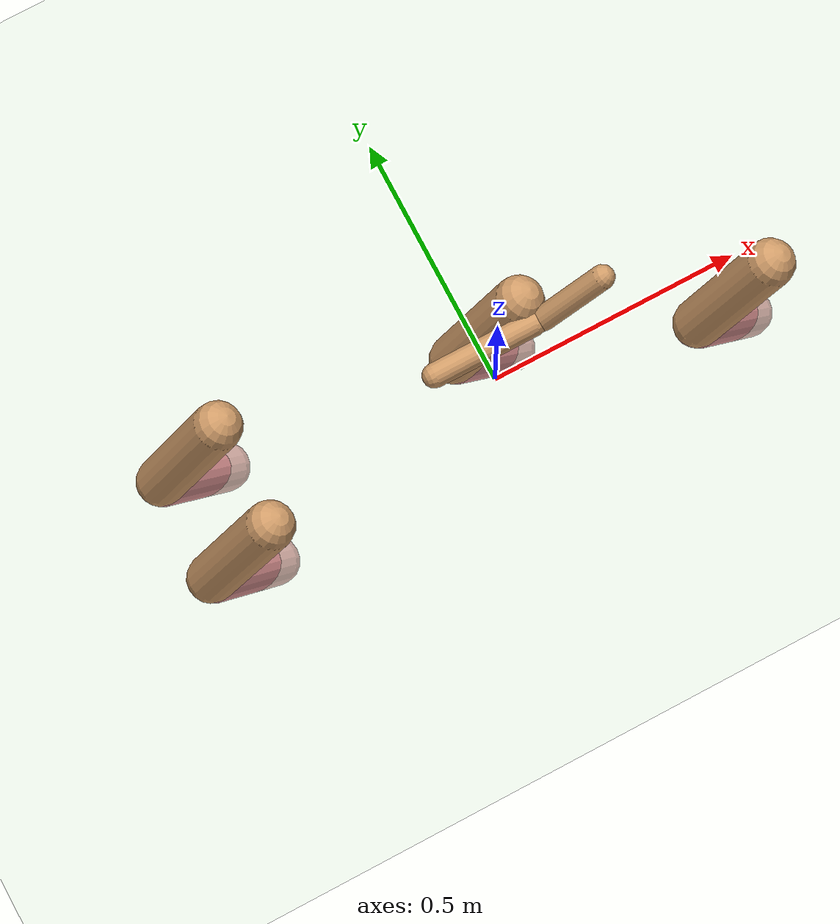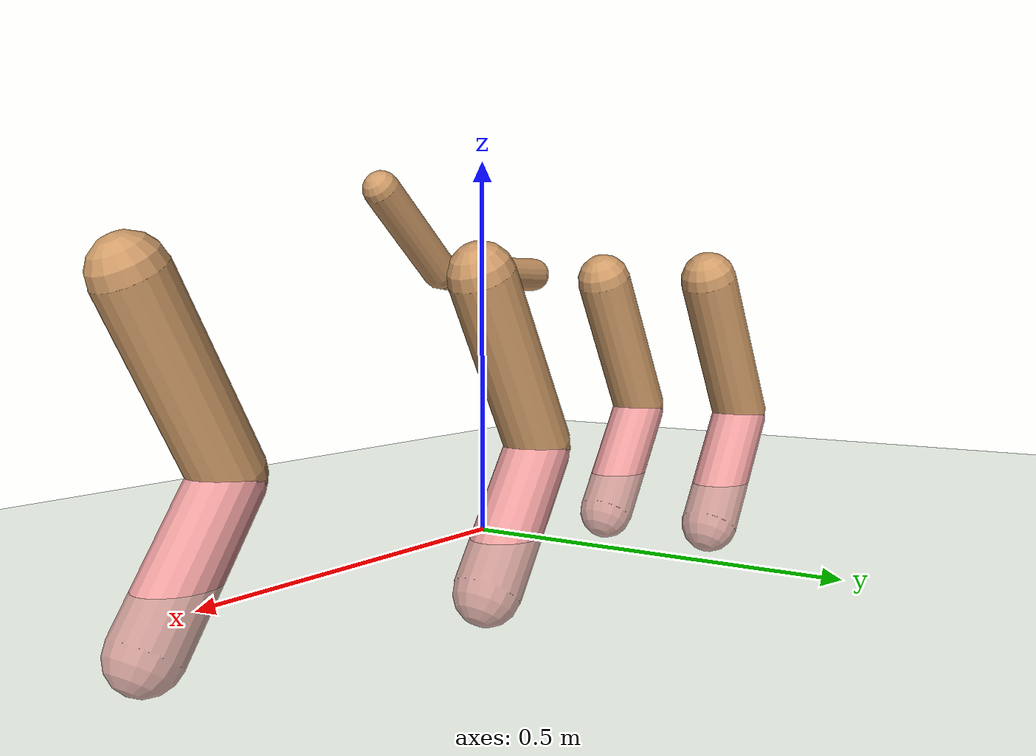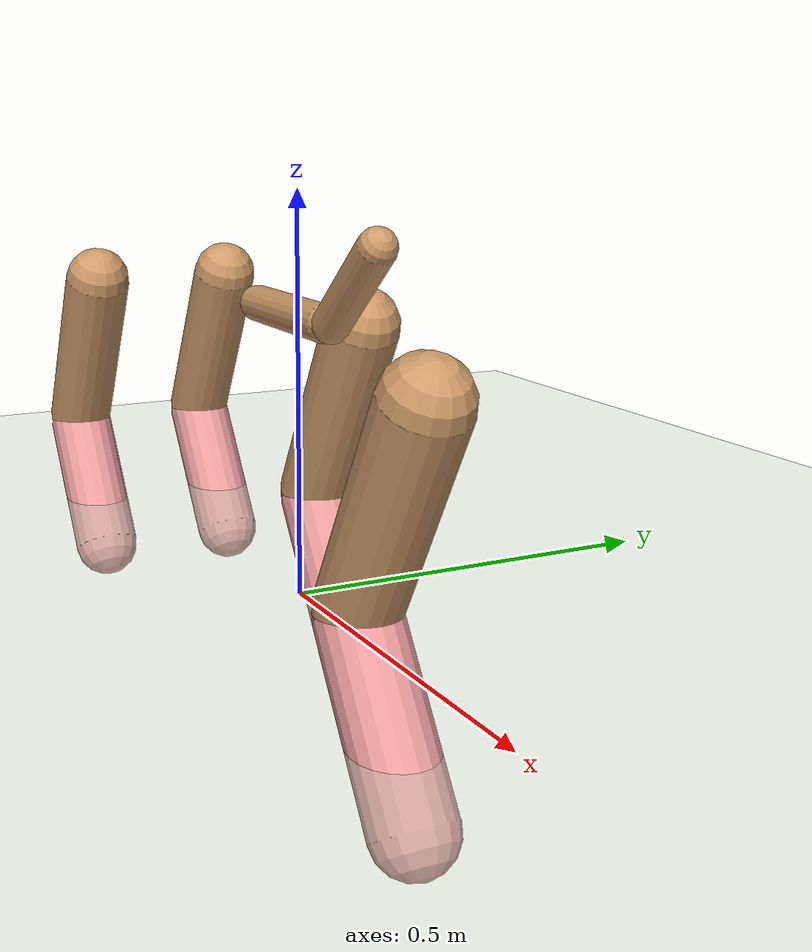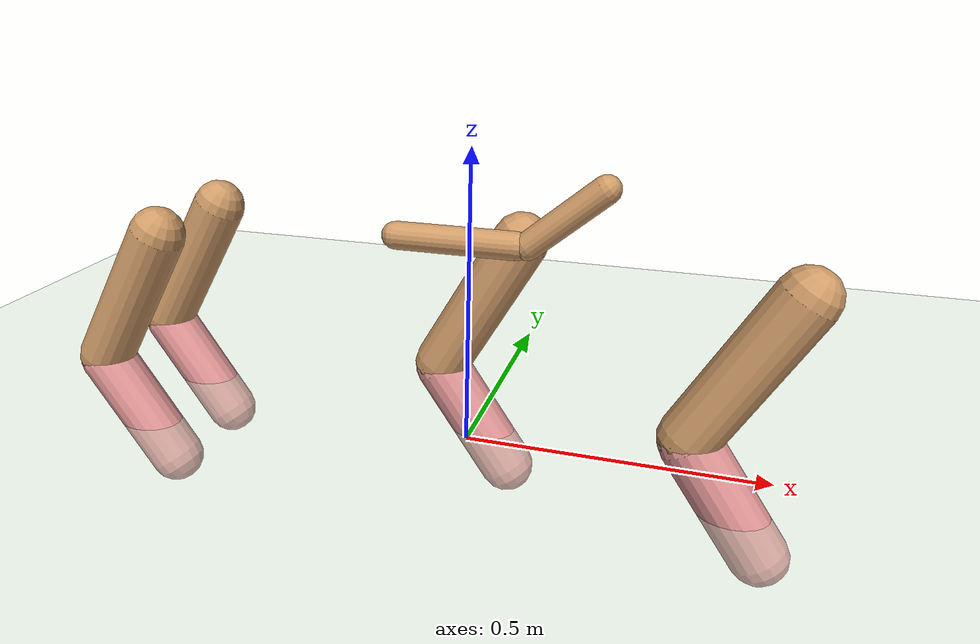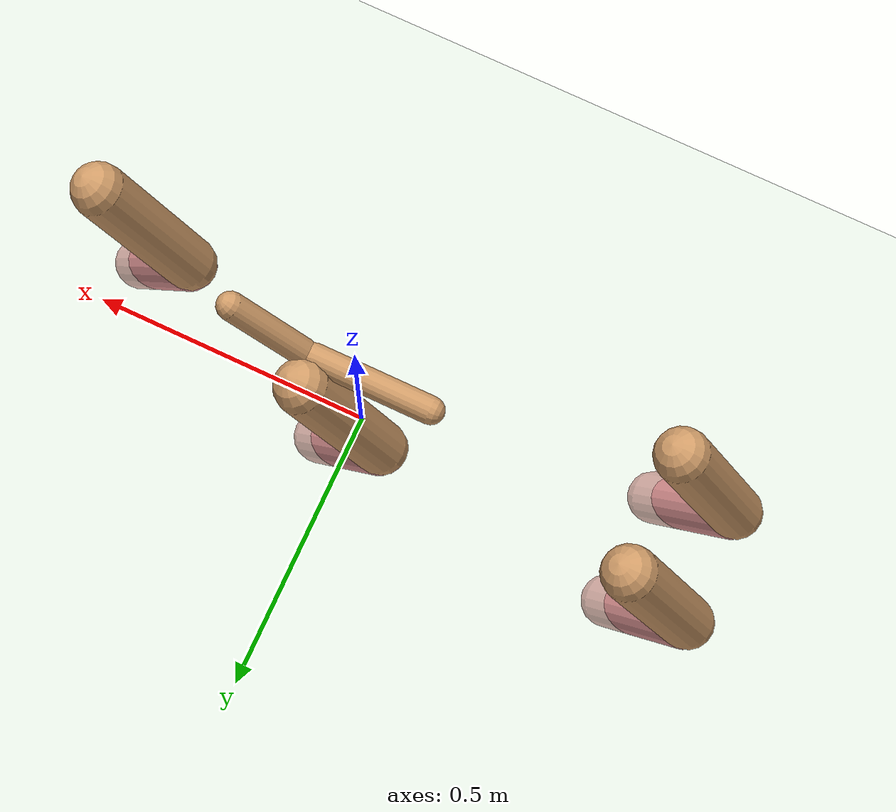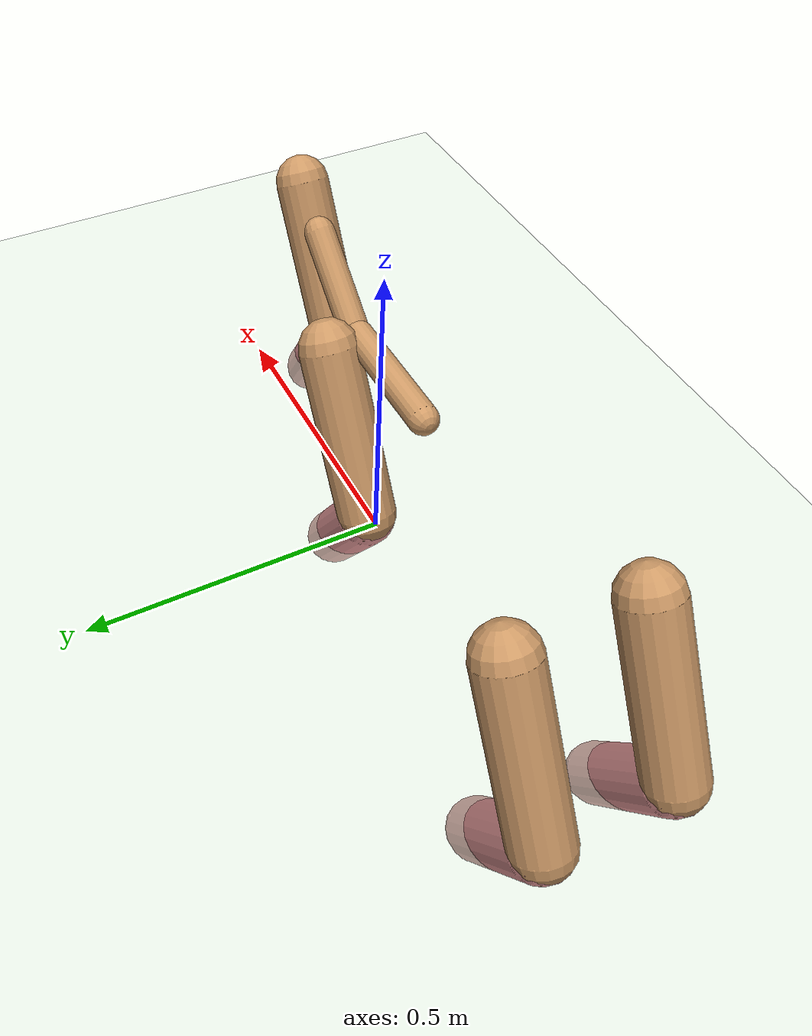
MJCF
<mujoco model="cheetah">
  <compiler angle="radian" coordinate="local" inertiafromgeom="true"/>
  <default>
    <joint armature=".05" damping=".005" limited="true" solimplimit="0 .8 .03" solreflimit=".02 1" stiffness="4"/>
    <geom conaffinity="0" condim="3" contype="1" friction=".4 .1 .1" rgba="0.8 0.6 .4 1" solimp="0.0 0.8 0.01" solref="0.02 1"/>
    <motor ctrllimited="true" ctrlrange="-1 1"/>
  </default>
  <size nstack="300000" nuser_geom="1"/>
  <option gravity="0 0 -9.81" timestep="0.01"/>
  <asset>
    <texture builtin="gradient" height="100" rgb1="1 1 1" rgb2="0 0 0" type="skybox" width="100"/>
    <texture builtin="flat" height="1278" mark="cross" markrgb="1 1 1" name="texgeom" random="0.01" rgb1="0.8 0.6 0.4" rgb2="0.8 0.6 0.4" type="cube" width="127"/>
    <texture builtin="checker" height="100" name="texplane" rgb1="0 0 0" rgb2="0.8 0.8 0.8" type="2d" width="100"/>
    <material name="MatPlane" reflectance="0.5" shininess="1" specular="1" texrepeat="60 60" texture="texplane"/>
    <material name="geom" texture="texgeom" texuniform="true"/>
  </asset>
  <worldbody>
    <light cutoff="100" diffuse="1 1 1" dir="-0 0 -1.3" directional="true" exponent="1" pos="0 0 1.3" specular=".1 .1 .1"/>
    <geom conaffinity="1" condim="3" material="MatPlane" name="floor" pos="0 0 0" rgba="0.8 0.9 0.8 1" size="40 40 40" type="plane"/>
    <body name="torso" pos="0 0 .35">
      <camera name="track" mode="trackcom" pos="0 -1.5 0.15" xyaxes="1 0 0 0 0 1"/>
      <joint armature="0" axis="1 0 0" damping="0" limited="false" name="rootx" pos="0 0 0" stiffness="0" type="slide"/>
      <joint armature="0" axis="0 0 1" damping="0" limited="false" name="rootz" pos="0 0 0" stiffness="0" type="slide"/>
      <joint armature="0" axis="0 1 0" damping="0" limited="false" name="rooty" pos="0 0 0" stiffness="0" type="hinge"/>
      <inertial pos ="0 0 0" mass="0.114"/>
      <geom fromto="-.125 0 0 .075 0 0" name="torso" size="0.023" type="capsule"/>
      <geom axisangle="0 1 0 .87" name="head" pos=".15 0 .05" size="0.023 .075" type="capsule"/>

      <!-- Left front leg -->
      <body name="lfthigh" pos=".075 0.05 0">
        <joint axis="0 1 0" damping="4.5" name="lfthigh" pos="0 0 0" range="-1 .7" stiffness="180" type="hinge"/>
        <geom axisangle="0 1 0 .52" name="lfthigh" pos="-.07 0 -.12" size="0.046 .133" type="capsule"/>
        <body name="lfshin" pos="-.14 0 -.24">
          <joint axis="0 1 0" damping="3" name="lfshin" pos="0 0 0" range="-1.2 .87" stiffness="120" type="hinge"/>
          <geom axisangle="0 1 0 -.6" name="lfshin" pos=".065 0 -.09" rgba="0.9 0.6 0.6 1" size="0.046 .106" type="capsule"/>
        </body>
      </body>

      <!-- Right front leg -->
      <body name="rfthigh" pos=".5 -0.1 0">
        <joint axis="0 1 0" damping="4.5" name="rfthigh" pos="0 0 0" range="-1 .7" stiffness="180" type="hinge"/>
        <geom axisangle="0 1 0 .52" name="rfthigh" pos="-.07 0 -.12" size="0.046 .133" type="capsule"/>
        <body name="rfshin" pos="-.14 0 -.24">
          <joint axis="0 1 0" damping="3" name="rfshin" pos="0 0 0" range="-1.2 .87" stiffness="120" type="hinge"/>
          <geom axisangle="0 1 0 -.6" name="rfshin" pos=".065 0 -.09" rgba="0.9 0.6 0.6 1" size="0.046 .106" type="capsule"/>
        </body>
      </body>

      <body name="lbthigh" pos="-.5 0.1 0">
        <joint axis="0 1 0" damping="4.5" name="lbthigh" pos="0 0 0" range="-1 .7" stiffness="180" type="hinge"/>
        <geom axisangle="0 1 0 .52" name="lbthigh" pos="-.07 0 -.12" size="0.046 .133" type="capsule"/>
        <body name="lbshin" pos="-.14 0 -.24">
          <joint axis="0 1 0" damping="3" name="lbshin" pos="0 0 0" range="-1.2 .87" stiffness="120" type="hinge"/>
          <geom axisangle="0 1 0 -.6" name="lbshin" pos=".065 0 -.09" rgba="0.9 0.6 0.6 1" size="0.046 .106" type="capsule"/>
        </body>
      </body>

      <body name="rbthigh" pos="-.5 -0.1 0">
        <joint axis="0 1 0" damping="4.5" name="rbthigh" pos="0 0 0" range="-1 .7" stiffness="180" type="hinge"/>
        <geom axisangle="0 1 0 .52" name="rbthigh" pos="-.07 0 -.12" size="0.046 .133" type="capsule"/>
        <body name="rbshin" pos="-.14 0 -.24">
          <joint axis="0 1 0" damping="3" name="rbshin" pos="0 0 0" range="-1.2 .87" stiffness="120" type="hinge"/>
          <geom axisangle="0 1 0 -.6" name="rbshin" pos=".065 0 -.09" rgba="0.9 0.6 0.6 1" size="0.046 .106" type="capsule"/>
        </body>
      </body>

      <!-- Left back leg -->

      <!-- Right back leg -->
    </body>
  </worldbody>
  <actuator>
    <!-- Left front leg actuators -->
    <motor gear="120" joint="lfthigh" name="lfthigh"/>
    <motor gear="60" joint="lfshin" name="lfshin"/>

    <!-- Right front leg actuators -->
    <motor gear="120" joint="rfthigh" name="rfthigh"/>
    <motor gear="60" joint="rfshin" name="rfshin"/>

    <!-- Left back leg actuators -->
    <motor gear="120" joint="lbthigh" name="lbthigh"/>
    <motor gear="90" joint="lbshin" name="lbshin"/>

    <!-- Right back leg actuators -->
    <motor gear="120" joint="rbthigh" name="rbthigh"/>
    <motor gear="90" joint="rbshin" name="rbshin"/>
  </actuator>
</mujoco>
